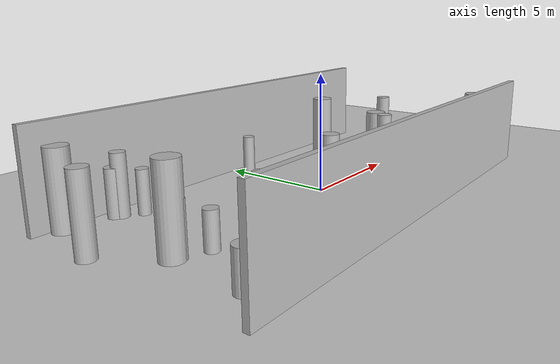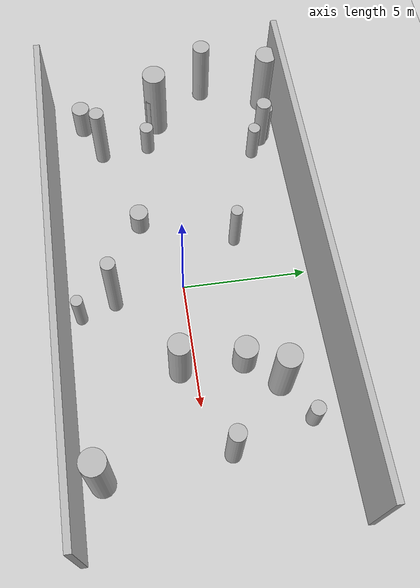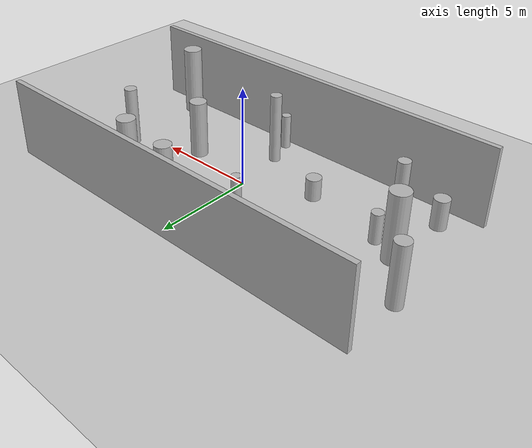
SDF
<?xml version="1.0"?>
<sdf version="1.4">
  <world name="default">
    <gui>
      <camera name="user_camera">
        <pose>-20 -30 40 0 0.66 0.83</pose>
      </camera>
    </gui>
    <include>
      <uri>model://ground_plane</uri>
    </include>
    <include>
      <uri>model://sun</uri>
    </include>
    <scene>
      <shadows>0</shadows>
    </scene>
    <model name="forest">
      <static>true</static>
      <link name="cylinder0">
        <pose>7.3468845013037445 -3.869464301127551 1.8047186835883227 0 0 0 </pose>
        <visual name="visual">
          <geometry>
            <cylinder>
              <radius>0.47289110694879266</radius>
              <length>3.6094373671766453</length>
            </cylinder>
          </geometry>
        </visual>
        <collision name="collision">
          <geometry>
            <cylinder>
              <radius>0.47289110694879266</radius>
              <length>3.6094373671766453</length>
            </cylinder>
          </geometry>
          <max_contacts>0</max_contacts>
        </collision>
      </link>
      <link name="cylinder1">
        <pose>-3.1191555262354527 -1.4052197816951182 0.5497032313304162 0 0 0 </pose>
        <visual name="visual">
          <geometry>
            <cylinder>
              <radius>0.373590739970744</radius>
              <length>1.0994064626608324</length>
            </cylinder>
          </geometry>
        </visual>
        <collision name="collision">
          <geometry>
            <cylinder>
              <radius>0.373590739970744</radius>
              <length>1.0994064626608324</length>
            </cylinder>
          </geometry>
          <max_contacts>0</max_contacts>
        </collision>
      </link>
      <link name="cylinder2">
        <pose>-7.017430857625467 4.530065982109068 0.9825965834935483 0 0 0 </pose>
        <visual name="visual">
          <geometry>
            <cylinder>
              <radius>0.30736147089456123</radius>
              <length>1.9651931669870966</length>
            </cylinder>
          </geometry>
        </visual>
        <collision name="collision">
          <geometry>
            <cylinder>
              <radius>0.30736147089456123</radius>
              <length>1.9651931669870966</length>
            </cylinder>
          </geometry>
          <max_contacts>0</max_contacts>
        </collision>
      </link>
      <link name="cylinder3">
        <pose>-6.830710491575989 4.392571475737601 1.269645434152285 0 0 0 </pose>
        <visual name="visual">
          <geometry>
            <cylinder>
              <radius>0.3020624096561043</radius>
              <length>2.53929086830457</length>
            </cylinder>
          </geometry>
        </visual>
        <collision name="collision">
          <geometry>
            <cylinder>
              <radius>0.3020624096561043</radius>
              <length>2.53929086830457</length>
            </cylinder>
          </geometry>
          <max_contacts>0</max_contacts>
        </collision>
      </link>
      <link name="cylinder4">
        <pose>-7.066598546153813 -0.6173289009598086 0.7524756681206527 0 0 0 </pose>
        <visual name="visual">
          <geometry>
            <cylinder>
              <radius>0.281246905436279</radius>
              <length>1.5049513362413054</length>
            </cylinder>
          </geometry>
        </visual>
        <collision name="collision">
          <geometry>
            <cylinder>
              <radius>0.281246905436279</radius>
              <length>1.5049513362413054</length>
            </cylinder>
          </geometry>
          <max_contacts>0</max_contacts>
        </collision>
      </link>
      <link name="cylinder5">
        <pose>-8.089133731956524 -0.28468939535641624 1.0292081057918503 0 0 0 </pose>
        <visual name="visual">
          <geometry>
            <cylinder>
              <radius>0.22041150357222122</radius>
              <length>2.0584162115837006</length>
            </cylinder>
          </geometry>
        </visual>
        <collision name="collision">
          <geometry>
            <cylinder>
              <radius>0.22041150357222122</radius>
              <length>2.0584162115837006</length>
            </cylinder>
          </geometry>
          <max_contacts>0</max_contacts>
        </collision>
      </link>
      <link name="cylinder6">
        <pose>-9.82639459445776 2.147984196145888 1.5351586361064584 0 0 0 </pose>
        <visual name="visual">
          <geometry>
            <cylinder>
              <radius>0.3589418665969697</radius>
              <length>3.070317272212917</length>
            </cylinder>
          </geometry>
        </visual>
        <collision name="collision">
          <geometry>
            <cylinder>
              <radius>0.3589418665969697</radius>
              <length>3.070317272212917</length>
            </cylinder>
          </geometry>
          <max_contacts>0</max_contacts>
        </collision>
      </link>
      <link name="cylinder7">
        <pose>-8.924715591964013 4.824218508730931 1.5753160215918454 0 0 0 </pose>
        <visual name="visual">
          <geometry>
            <cylinder>
              <radius>0.4492354195601298</radius>
              <length>3.1506320431836907</length>
            </cylinder>
          </geometry>
        </visual>
        <collision name="collision">
          <geometry>
            <cylinder>
              <radius>0.4492354195601298</radius>
              <length>3.1506320431836907</length>
            </cylinder>
          </geometry>
          <max_contacts>0</max_contacts>
        </collision>
      </link>
      <link name="cylinder8">
        <pose>6.027005989496075 4.040311010089312 0.6906917614660404 0 0 0 </pose>
        <visual name="visual">
          <geometry>
            <cylinder>
              <radius>0.28626719929717465</radius>
              <length>1.3813835229320808</length>
            </cylinder>
          </geometry>
        </visual>
        <collision name="collision">
          <geometry>
            <cylinder>
              <radius>0.28626719929717465</radius>
              <length>1.3813835229320808</length>
            </cylinder>
          </geometry>
          <max_contacts>0</max_contacts>
        </collision>
      </link>
      <link name="cylinder9">
        <pose>-8.269752626292409 -0.0815783642117518 1.700328206379623 0 0 0 </pose>
        <visual name="visual">
          <geometry>
            <cylinder>
              <radius>0.47268076505212997</radius>
              <length>3.400656412759246</length>
            </cylinder>
          </geometry>
        </visual>
        <collision name="collision">
          <geometry>
            <cylinder>
              <radius>0.47268076505212997</radius>
              <length>3.400656412759246</length>
            </cylinder>
          </geometry>
          <max_contacts>0</max_contacts>
        </collision>
      </link>
      <link name="cylinder10">
        <pose>4.5522283230696345 3.098478041313994 1.5430992020196523 0 0 0 </pose>
        <visual name="visual">
          <geometry>
            <cylinder>
              <radius>0.4641252080514643</radius>
              <length>3.0861984040393047</length>
            </cylinder>
          </geometry>
        </visual>
        <collision name="collision">
          <geometry>
            <cylinder>
              <radius>0.4641252080514643</radius>
              <length>3.0861984040393047</length>
            </cylinder>
          </geometry>
          <max_contacts>0</max_contacts>
        </collision>
      </link>
      <link name="cylinder11">
        <pose>6.929332917602352 0.8785177807899194 1.5226667259156612 0 0 0 </pose>
        <visual name="visual">
          <geometry>
            <cylinder>
              <radius>0.31504063423912826</radius>
              <length>3.0453334518313224</length>
            </cylinder>
          </geometry>
        </visual>
        <collision name="collision">
          <geometry>
            <cylinder>
              <radius>0.31504063423912826</radius>
              <length>3.0453334518313224</length>
            </cylinder>
          </geometry>
          <max_contacts>0</max_contacts>
        </collision>
      </link>
      <link name="cylinder12">
        <pose>3.48420175148069 1.8821514798095755 0.7995610398728571 0 0 0 </pose>
        <visual name="visual">
          <geometry>
            <cylinder>
              <radius>0.45986451054869004</radius>
              <length>1.5991220797457142</length>
            </cylinder>
          </geometry>
        </visual>
        <collision name="collision">
          <geometry>
            <cylinder>
              <radius>0.45986451054869004</radius>
              <length>1.5991220797457142</length>
            </cylinder>
          </geometry>
          <max_contacts>0</max_contacts>
        </collision>
      </link>
      <link name="cylinder13">
        <pose>-6.1583493067925605 3.916203900054544 0.9105533585003325 0 0 0 </pose>
        <visual name="visual">
          <geometry>
            <cylinder>
              <radius>0.2532792930206504</radius>
              <length>1.821106717000665</length>
            </cylinder>
          </geometry>
        </visual>
        <collision name="collision">
          <geometry>
            <cylinder>
              <radius>0.2532792930206504</radius>
              <length>1.821106717000665</length>
            </cylinder>
          </geometry>
          <max_contacts>0</max_contacts>
        </collision>
      </link>
      <link name="cylinder14">
        <pose>3.5616279328486726 -0.5970954854746502 1.4742921724937992 0 0 0 </pose>
        <visual name="visual">
          <geometry>
            <cylinder>
              <radius>0.4284511378561753</radius>
              <length>2.9485843449875984</length>
            </cylinder>
          </geometry>
        </visual>
        <collision name="collision">
          <geometry>
            <cylinder>
              <radius>0.4284511378561753</radius>
              <length>2.9485843449875984</length>
            </cylinder>
          </geometry>
          <max_contacts>0</max_contacts>
        </collision>
      </link>
      <link name="cylinder15">
        <pose>0.39005686469317524 -2.7651397739855064 1.7909614293072484 0 0 0 </pose>
        <visual name="visual">
          <geometry>
            <cylinder>
              <radius>0.27733406090351537</radius>
              <length>3.581922858614497</length>
            </cylinder>
          </geometry>
        </visual>
        <collision name="collision">
          <geometry>
            <cylinder>
              <radius>0.27733406090351537</radius>
              <length>3.581922858614497</length>
            </cylinder>
          </geometry>
          <max_contacts>0</max_contacts>
        </collision>
      </link>
      <link name="cylinder16">
        <pose>-8.491621730539691 -3.361483888021599 0.7516695023230555 0 0 0 </pose>
        <visual name="visual">
          <geometry>
            <cylinder>
              <radius>0.3749108803507878</radius>
              <length>1.503339004646111</length>
            </cylinder>
          </geometry>
        </visual>
        <collision name="collision">
          <geometry>
            <cylinder>
              <radius>0.3749108803507878</radius>
              <length>1.503339004646111</length>
            </cylinder>
          </geometry>
          <max_contacts>0</max_contacts>
        </collision>
      </link>
      <link name="cylinder17">
        <pose>-6.881035762226557 -2.6384936144471305 1.5102896655139357 0 0 0 </pose>
        <visual name="visual">
          <geometry>
            <cylinder>
              <radius>0.2997354110933223</radius>
              <length>3.0205793310278715</length>
            </cylinder>
          </geometry>
        </visual>
        <collision name="collision">
          <geometry>
            <cylinder>
              <radius>0.2997354110933223</radius>
              <length>3.0205793310278715</length>
            </cylinder>
          </geometry>
          <max_contacts>0</max_contacts>
        </collision>
      </link>
      <link name="cylinder18">
        <pose>-1.8543158586474142 2.3989597233574447 1.208892659730869 0 0 0 </pose>
        <visual name="visual">
          <geometry>
            <cylinder>
              <radius>0.2314826147743698</radius>
              <length>2.417785319461738</length>
            </cylinder>
          </geometry>
        </visual>
        <collision name="collision">
          <geometry>
            <cylinder>
              <radius>0.2314826147743698</radius>
              <length>2.417785319461738</length>
            </cylinder>
          </geometry>
          <max_contacts>0</max_contacts>
        </collision>
      </link>
      <link name="cylinder19">
        <pose>0.8417635433075326 -4.148276407329367 0.898290213664937 0 0 0 </pose>
        <visual name="visual">
          <geometry>
            <cylinder>
              <radius>0.23371647788719507</radius>
              <length>1.796580427329874</length>
            </cylinder>
          </geometry>
        </visual>
        <collision name="collision">
          <geometry>
            <cylinder>
              <radius>0.23371647788719507</radius>
              <length>1.796580427329874</length>
            </cylinder>
          </geometry>
          <max_contacts>0</max_contacts>
        </collision>
      </link>
      <link name="cube0">
        <pose>0 5.25 2.0 0 0 0 </pose>
        <visual name="visual">
          <geometry>
            <box>
              <size>20 0.25 4.0</size>
            </box>
          </geometry>
        </visual>
        <collision name="collision">
          <geometry>
            <box>
              <size>20 0.25 4.0</size>
            </box>
          </geometry>
          <max_contacts>0</max_contacts>
        </collision>
      </link>
      <link name="cube1">
        <pose>0 -4.75 2.0 0 0 0 </pose>
        <visual name="visual">
          <geometry>
            <box>
              <size>20 0.25 4.0</size>
            </box>
          </geometry>
        </visual>
        <collision name="collision">
          <geometry>
            <box>
              <size>20 0.25 4.0</size>
            </box>
          </geometry>
          <max_contacts>0</max_contacts>
        </collision>
      </link>
    </model>
    <!-- Plugins -->
    <plugin name="gazebo_octomap" filename="librotors_gazebo_octomap_plugin.so"/>
    <plugin name="ros_interface_plugin" filename="librotors_gazebo_ros_interface_plugin.so"/>
    <!-- Physics -->
    <physics name="default_physics" default="0" type="ode">
      <max_step_size>0.004</max_step_size>
      <real_time_factor>1</real_time_factor>
      <real_time_update_rate>250</real_time_update_rate>
      <gravity>0 0 -9.8</gravity>
      <magnetic_field>6e-06 2.3e-05 -4.2e-05</magnetic_field>
      <ode>
        <solver>
          <type>quick</type>
          <iters>1000</iters>
          <sor>1.3</sor>
          <use_dynamic_moi_rescaling>0</use_dynamic_moi_rescaling>
        </solver>
        <constraints>
          <cfm>0</cfm>
          <erp>0.2</erp>
          <contact_max_correcting_vel>100</contact_max_correcting_vel>
          <contact_surface_layer>0.001</contact_surface_layer>
        </constraints>
      </ode>
    </physics>
  </world>
</sdf>
